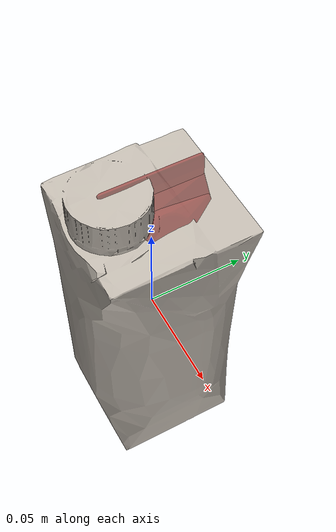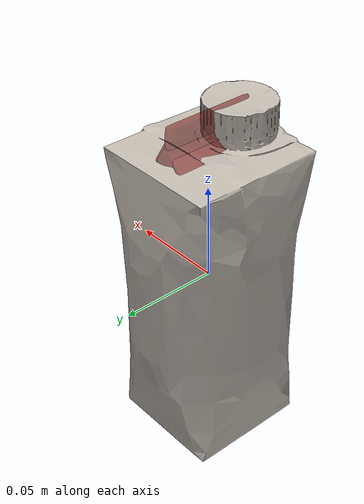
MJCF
<?xml version='1.0' encoding='utf-8'?>
<mujoco model="milk_29">
  <asset>
    <mesh file="visual/model_normalized_0.obj" name="model_normalized_0_vis" scale="0.18 0.18 0.18" refquat="1.0 0.0 0.0 0.0" />
    <texture type="2d" name="image0" file="visual/image0.png" />
    <material name="Tetra_Rex" texture="image0" specular="0.5" shininess="0.359999993" />
    <mesh file="collision/collision_mesh_collision_0.obj" name="milk_collision_mesh_0" scale="0.18 0.18 0.18" refquat="1.0 0.0 0.0 0.0" />
    <mesh file="collision/collision_mesh_collision_1.obj" name="milk_collision_mesh_1" scale="0.18 0.18 0.18" refquat="1.0 0.0 0.0 0.0" />
    <mesh file="collision/collision_mesh_collision_2.obj" name="milk_collision_mesh_2" scale="0.18 0.18 0.18" refquat="1.0 0.0 0.0 0.0" />
    <mesh file="collision/collision_mesh_collision_3.obj" name="milk_collision_mesh_3" scale="0.18 0.18 0.18" refquat="1.0 0.0 0.0 0.0" />
    <mesh file="collision/collision_mesh_collision_4.obj" name="milk_collision_mesh_4" scale="0.18 0.18 0.18" refquat="1.0 0.0 0.0 0.0" />
    <mesh file="collision/collision_mesh_collision_5.obj" name="milk_collision_mesh_5" scale="0.18 0.18 0.18" refquat="1.0 0.0 0.0 0.0" />
    <mesh file="collision/collision_mesh_collision_6.obj" name="milk_collision_mesh_6" scale="0.18 0.18 0.18" refquat="1.0 0.0 0.0 0.0" />
    <mesh file="collision/collision_mesh_collision_7.obj" name="milk_collision_mesh_7" scale="0.18 0.18 0.18" refquat="1.0 0.0 0.0 0.0" />
  </asset>
  <default>
    <default class="region">
      <geom group="1" conaffinity="0" contype="0" rgba="0 1 0 0" mass="0" />
    </default>
    <default class="collision">
      <geom group="0" rgba="0.5 0 0 0.5" density="1238.025322151" />
    </default>
  </default>
  <worldbody>
    <body>
      <body name="object">
        <geom solimp="0.998 0.998 0.001" solref="0.001 1" density="123.802532215" friction="0.95 0.3 0.1" type="mesh" mesh="model_normalized_0_vis" conaffinity="0" contype="0" group="1" material="Tetra_Rex" />
        <geom class="region" name="reg_bbox" type="box" pos="-3.7386000000005913e-06 0.0 -0.0002475036000000008" size="0.0252068022 0.024916251599999998 0.0907425108" />
        <geom mesh="milk_collision_mesh_0" type="mesh" class="collision" />
        <geom mesh="milk_collision_mesh_1" type="mesh" class="collision" />
        <geom mesh="milk_collision_mesh_2" type="mesh" class="collision" />
        <geom mesh="milk_collision_mesh_3" type="mesh" class="collision" />
        <geom mesh="milk_collision_mesh_4" type="mesh" class="collision" />
        <geom mesh="milk_collision_mesh_5" type="mesh" class="collision" />
        <geom mesh="milk_collision_mesh_6" type="mesh" class="collision" />
        <geom mesh="milk_collision_mesh_7" type="mesh" class="collision" />
      </body>
    </body>
  </worldbody>
</mujoco>
